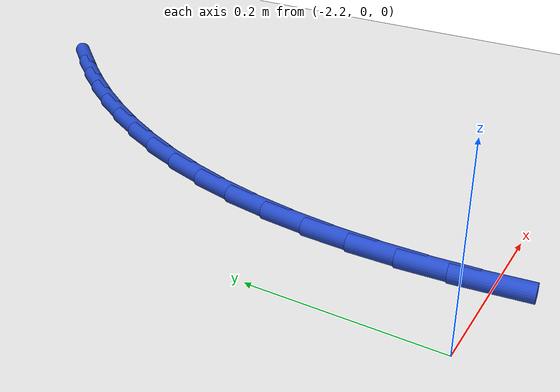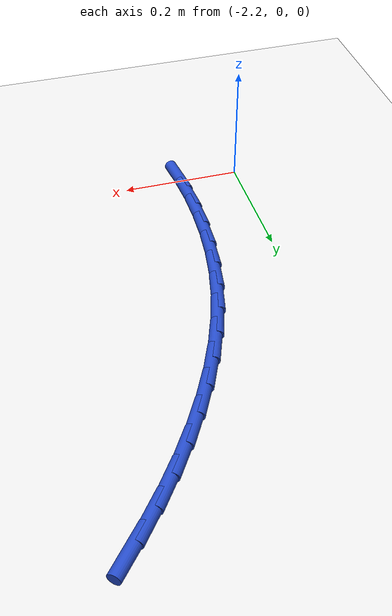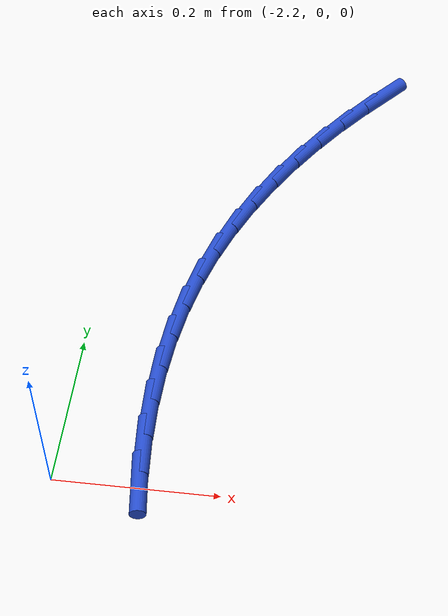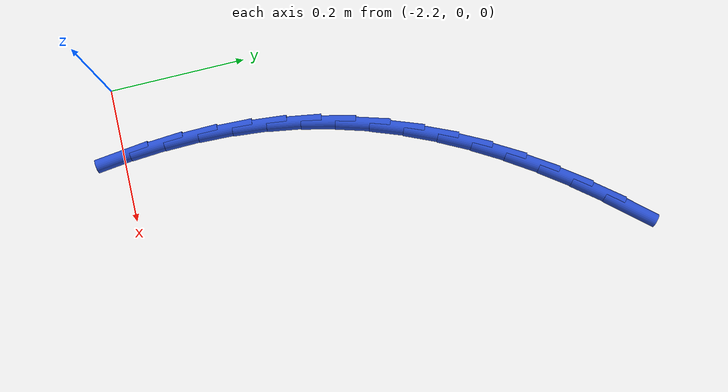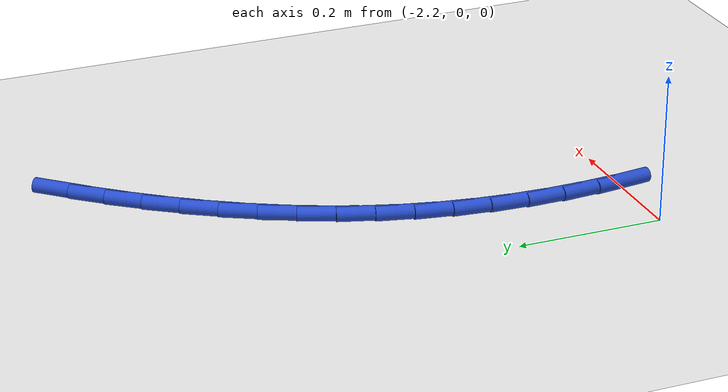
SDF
<sdf version="1.6">
 <world name="default">
  <model name="ground_plane">
   <static>1</static>
   <link name="link">
    <collision name="collision">
     <geometry><plane><normal>0 0 1</normal><size>100 100</size></plane></geometry>
     <surface><friction><ode><mu>100</mu><mu2>50</mu2></ode></friction></surface>
    </collision>
    <visual name="visual">
     <cast_shadows>0</cast_shadows>
     <geometry><plane><normal>0 0 1</normal><size>100 100</size></plane></geometry>
     <material>
      <script><uri>file://media/materials/scripts/gazebo.material</uri><name>Gazebo/WhiteGlow</name></script>
     </material>
    </visual>
   </link>
  </model>
  <model name="line">
   <link name="link_50">
    <pose>-1.8462378251134632 0.6921175136046137 0.01 0 1.57 0.8446293567503622</pose>
    <collision name="collision">
     <geometry><cylinder><radius>0.01</radius><length>0.08</length></cylinder></geometry>
    </collision>
    <visual name="visual">
     <material>
      <script><name>Gazebo/Blue</name><uri>file://media/materials/scripts/gazebo.material</uri></script>
     </material>
     <geometry><cylinder><radius>0.01</radius><length>0.08</length></cylinder></geometry>
    </visual>
   </link>
   <link name="link_51">
    <pose>-1.8803651578723284 0.6536874890477826 0.01 0 1.57 0.8878676421405794</pose>
    <collision name="collision">
     <geometry><cylinder><radius>0.01</radius><length>0.08</length></cylinder></geometry>
    </collision>
    <visual name="visual">
     <material>
      <script><name>Gazebo/Blue</name><uri>file://media/materials/scripts/gazebo.material</uri></script>
     </material>
     <geometry><cylinder><radius>0.01</radius><length>0.08</length></cylinder></geometry>
    </visual>
   </link>
   <link name="link_52">
    <pose>-1.9127594304580104 0.6138674446444156 0.01 0 1.57 0.9336380829835996</pose>
    <collision name="collision">
     <geometry><cylinder><radius>0.01</radius><length>0.08</length></cylinder></geometry>
    </collision>
    <visual name="visual">
     <material>
      <script><name>Gazebo/Blue</name><uri>file://media/materials/scripts/gazebo.material</uri></script>
     </material>
     <geometry><cylinder><radius>0.01</radius><length>0.08</length></cylinder></geometry>
    </visual>
   </link>
   <link name="link_53">
    <pose>-1.9432161503086602 0.5727172814852964 0.01 0 1.57 0.9822321825096952</pose>
    <collision name="collision">
     <geometry><cylinder><radius>0.01</radius><length>0.08</length></cylinder></geometry>
    </collision>
    <visual name="visual">
     <material>
      <script><name>Gazebo/Blue</name><uri>file://media/materials/scripts/gazebo.material</uri></script>
     </material>
     <geometry><cylinder><radius>0.01</radius><length>0.08</length></cylinder></geometry>
    </visual>
   </link>
   <link name="link_54">
    <pose>-1.9715308248624313 0.5302969006612096 0.01 0 1.57 1.0339281734393146</pose>
    <collision name="collision">
     <geometry><cylinder><radius>0.01</radius><length>0.08</length></cylinder></geometry>
    </collision>
    <visual name="visual">
     <material>
      <script><name>Gazebo/Blue</name><uri>file://media/materials/scripts/gazebo.material</uri></script>
     </material>
     <geometry><cylinder><radius>0.01</radius><length>0.08</length></cylinder></geometry>
    </visual>
   </link>
   <link name="link_55">
    <pose>-1.9974989615574743 0.4866662032629401 0.01 0 1.57 1.0889783704061131</pose>
    <collision name="collision">
     <geometry><cylinder><radius>0.01</radius><length>0.08</length></cylinder></geometry>
    </collision>
    <visual name="visual">
     <material>
      <script><name>Gazebo/Blue</name><uri>file://media/materials/scripts/gazebo.material</uri></script>
     </material>
     <geometry><cylinder><radius>0.01</radius><length>0.08</length></cylinder></geometry>
    </visual>
   </link>
   <link name="link_56">
    <pose>-2.0209160678319416 0.44188509038127277 0.01 0 1.57 1.1475916439208136</pose>
    <collision name="collision">
     <geometry><cylinder><radius>0.01</radius><length>0.08</length></cylinder></geometry>
    </collision>
    <visual name="visual">
     <material>
      <script><name>Gazebo/Blue</name><uri>file://media/materials/scripts/gazebo.material</uri></script>
     </material>
     <geometry><cylinder><radius>0.01</radius><length>0.08</length></cylinder></geometry>
    </visual>
   </link>
   <link name="link_57">
    <pose>-2.041577651123985 0.39601346310699204 0.01 0 1.57 1.209910851364513</pose>
    <collision name="collision">
     <geometry><cylinder><radius>0.01</radius><length>0.08</length></cylinder></geometry>
    </collision>
    <visual name="visual">
     <material>
      <script><name>Gazebo/Blue</name><uri>file://media/materials/scripts/gazebo.material</uri></script>
     </material>
     <geometry><cylinder><radius>0.01</radius><length>0.08</length></cylinder></geometry>
    </visual>
   </link>
   <link name="link_58">
    <pose>-2.059279218871757 0.34911122253088206 0.01 0 1.57 1.2759859137590184</pose>
    <collision name="collision">
     <geometry><cylinder><radius>0.01</radius><length>0.08</length></cylinder></geometry>
    </collision>
    <visual name="visual">
     <material>
      <script><name>Gazebo/Blue</name><uri>file://media/materials/scripts/gazebo.material</uri></script>
     </material>
     <geometry><cylinder><radius>0.01</radius><length>0.08</length></cylinder></geometry>
    </visual>
   </link>
   <link name="link_59">
    <pose>-2.0738162785134078 0.3012382697437277 0.01 0 1.57 1.3448217102454696</pose>
    <collision name="collision">
     <geometry><cylinder><radius>0.01</radius><length>0.08</length></cylinder></geometry>
    </collision>
    <visual name="visual">
     <material>
      <script><name>Gazebo/Blue</name><uri>file://media/materials/scripts/gazebo.material</uri></script>
     </material>
     <geometry><cylinder><radius>0.01</radius><length>0.08</length></cylinder></geometry>
    </visual>
   </link>
   <link name="link_60">
    <pose>-2.085028739306281 0.2524675048657042 0.01 0 1.57 1.411566866485134</pose>
    <collision name="collision">
     <geometry><cylinder><radius>0.01</radius><length>0.08</length></cylinder></geometry>
    </collision>
    <visual name="visual">
     <material>
      <script><name>Gazebo/Blue</name><uri>file://media/materials/scripts/gazebo.material</uri></script>
     </material>
     <geometry><cylinder><radius>0.01</radius><length>0.08</length></cylinder></geometry>
    </visual>
   </link>
   <link name="link_61">
    <pose>-2.092982626481006 0.2029380254889818 0.01 0 1.57 1.4746776937749406</pose>
    <collision name="collision">
     <geometry><cylinder><radius>0.01</radius><length>0.08</length></cylinder></geometry>
    </collision>
    <visual name="visual">
     <material>
      <script><name>Gazebo/Blue</name><uri>file://media/materials/scripts/gazebo.material</uri></script>
     </material>
     <geometry><cylinder><radius>0.01</radius><length>0.08</length></cylinder></geometry>
    </visual>
   </link>
   <link name="link_62">
    <pose>-2.097815762018093 0.15280994834591033 0.01 0 1.57 1.5342225390996924</pose>
    <collision name="collision">
     <geometry><cylinder><radius>0.01</radius><length>0.08</length></cylinder></geometry>
    </collision>
    <visual name="visual">
     <material>
      <script><name>Gazebo/Blue</name><uri>file://media/materials/scripts/gazebo.material</uri></script>
     </material>
     <geometry><cylinder><radius>0.01</radius><length>0.08</length></cylinder></geometry>
    </visual>
   </link>
   <link name="link_63">
    <pose>-2.099665997323963 0.10224339878353966 0.01 0 1.57 -1.5512331715752283</pose>
    <collision name="collision">
     <geometry><cylinder><radius>0.01</radius><length>0.08</length></cylinder></geometry>
    </collision>
    <visual name="visual">
     <material>
      <script><name>Gazebo/Blue</name><uri>file://media/materials/scripts/gazebo.material</uri></script>
     </material>
     <geometry><cylinder><radius>0.01</radius><length>0.08</length></cylinder></geometry>
    </visual>
   </link>
   <link name="link_64">
    <pose>-2.098671183805038 0.051398502148919556 0.01 0 1.57 -1.4982827108252117</pose>
    <collision name="collision">
     <geometry><cylinder><radius>0.01</radius><length>0.08</length></cylinder></geometry>
    </collision>
    <visual name="visual">
     <material>
      <script><name>Gazebo/Blue</name><uri>file://media/materials/scripts/gazebo.material</uri></script>
     </material>
     <geometry><cylinder><radius>0.01</radius><length>0.08</length></cylinder></geometry>
    </visual>
   </link>
   <link name="link_65">
    <pose>-2.0949691728677404 0.0004353837890991863 0.01 0 1.57 -1.44825536467031</pose>
    <collision name="collision">
     <geometry><cylinder><radius>0.01</radius><length>0.08</length></cylinder></geometry>
    </collision>
    <visual name="visual">
     <material>
      <script><name>Gazebo/Blue</name><uri>file://media/materials/scripts/gazebo.material</uri></script>
     </material>
     <geometry><cylinder><radius>0.01</radius><length>0.08</length></cylinder></geometry>
    </visual>
   </link>
  </model>
 </world>
</sdf>
